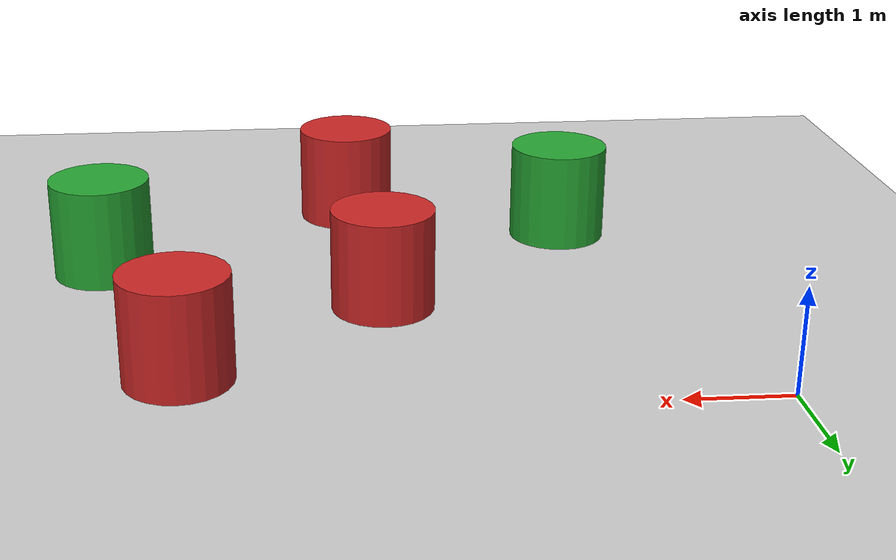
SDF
<sdf version="1.7">
 <world name="default">
  <model name="ground_plane">
   <static>1</static>
   <link name="link">
    <collision name="collision">
     <geometry><plane><normal>0 0 1</normal><size>100 100</size></plane></geometry>
     <surface>
      <contact><collide_bitmask>65535</collide_bitmask></contact>
      <friction><ode><mu>100</mu><mu2>50</mu2></ode></friction>
     </surface>
    </collision>
    <visual name="visual">
     <cast_shadows>0</cast_shadows>
     <geometry><plane><normal>0 0 1</normal><size>100 100</size></plane></geometry>
     <material>
      <script><uri>file://media/materials/scripts/gazebo.material</uri><name>Gazebo/Grey</name></script>
     </material>
    </visual>
   </link>
  </model>
  <model name="Astar_Dij_test.world_0">
   <link name="link_0_clone_10">
    <inertial>
     <mass>20</mass>
     <inertia><ixx>2.91667</ixx><ixy>0</ixy><ixz>0</ixz><iyy>2.91667</iyy><iyz>0</iyz><izz>2.5</izz></inertia>
    </inertial>
    <pose>12.0197 -4.31509 0 0 -0 0</pose>
    <visual name="visual">
     <geometry><cylinder><radius>0.5</radius><length>1</length></cylinder></geometry>
     <material>
      <lighting>1</lighting>
      <script><uri>file://media/materials/scripts/gazebo.material</uri><name>Gazebo/Red</name></script>
      <shader type="pixel"><normal_map>__default__</normal_map></shader>
      <ambient>1 0 0 1</ambient>
      <diffuse>1 0 0 1</diffuse>
      <specular>0.1 0.1 0.1 1</specular>
      <emissive>0 0 0 1</emissive>
     </material>
    </visual>
    <collision name="collision">
     <geometry><cylinder><radius>0.5</radius><length>1</length></cylinder></geometry>
     <surface>
      <friction>
       <ode><mu>1</mu><mu2>1</mu2><fdir1>0 0 0</fdir1><slip1>0</slip1><slip2>0</slip2></ode>
       <torsional>
        <coefficient>1</coefficient>
        <patch_radius>0</patch_radius>
        <surface_radius>0</surface_radius>
        <use_patch_radius>1</use_patch_radius>
        <ode><slip>0</slip></ode>
       </torsional>
      </friction>
      <bounce><restitution_coefficient>0</restitution_coefficient><threshold>1e+06</threshold></bounce>
      <contact>
       <collide_without_contact>0</collide_without_contact>
       <collide_without_contact_bitmask>1</collide_without_contact_bitmask>
       <collide_bitmask>1</collide_bitmask>
       <ode>
        <soft_cfm>0</soft_cfm>
        <soft_erp>0.2</soft_erp>
        <kp>1e+13</kp>
        <kd>1</kd>
        <max_vel>0.01</max_vel>
        <min_depth>0</min_depth>
       </ode>
       <bullet>
        <split_impulse>1</split_impulse>
        <split_impulse_penetration_threshold>-0.01</split_impulse_penetration_threshold>
        <soft_cfm>0</soft_cfm>
        <soft_erp>0.2</soft_erp>
        <kp>1e+13</kp>
        <kd>1</kd>
       </bullet>
      </contact>
     </surface>
    </collision>
   </link>
   <link name="link_0_clone_6">
    <inertial>
     <mass>20</mass>
     <inertia><ixx>2.91667</ixx><ixy>0</ixy><ixz>0</ixz><iyy>2.91667</iyy><iyz>0</iyz><izz>2.5</izz></inertia>
    </inertial>
    <pose>10.1266 -5.74101 0 0 -0 0</pose>
    <visual name="visual">
     <geometry><cylinder><radius>0.5</radius><length>1</length></cylinder></geometry>
     <material>
      <lighting>1</lighting>
      <script><uri>file://media/materials/scripts/gazebo.material</uri><name>Gazebo/Red</name></script>
      <shader type="pixel"><normal_map>__default__</normal_map></shader>
      <ambient>1 0 0 1</ambient>
      <diffuse>1 0 0 1</diffuse>
      <specular>0.1 0.1 0.1 1</specular>
      <emissive>0 0 0 1</emissive>
     </material>
    </visual>
    <collision name="collision">
     <geometry><cylinder><radius>0.5</radius><length>1</length></cylinder></geometry>
     <surface>
      <friction>
       <ode><mu>1</mu><mu2>1</mu2><fdir1>0 0 0</fdir1><slip1>0</slip1><slip2>0</slip2></ode>
       <torsional>
        <coefficient>1</coefficient>
        <patch_radius>0</patch_radius>
        <surface_radius>0</surface_radius>
        <use_patch_radius>1</use_patch_radius>
        <ode><slip>0</slip></ode>
       </torsional>
      </friction>
      <bounce><restitution_coefficient>0</restitution_coefficient><threshold>1e+06</threshold></bounce>
      <contact>
       <collide_without_contact>0</collide_without_contact>
       <collide_without_contact_bitmask>1</collide_without_contact_bitmask>
       <collide_bitmask>1</collide_bitmask>
       <ode>
        <soft_cfm>0</soft_cfm>
        <soft_erp>0.2</soft_erp>
        <kp>1e+13</kp>
        <kd>1</kd>
        <max_vel>0.01</max_vel>
        <min_depth>0</min_depth>
       </ode>
       <bullet>
        <split_impulse>1</split_impulse>
        <split_impulse_penetration_threshold>-0.01</split_impulse_penetration_threshold>
        <soft_cfm>0</soft_cfm>
        <soft_erp>0.2</soft_erp>
        <kp>1e+13</kp>
        <kd>1</kd>
       </bullet>
      </contact>
     </surface>
    </collision>
   </link>
   <link name="link_0_clone_7">
    <inertial>
     <mass>20</mass>
     <inertia><ixx>2.91667</ixx><ixy>0</ixy><ixz>0</ixz><iyy>2.91667</iyy><iyz>0</iyz><izz>2.5</izz></inertia>
    </inertial>
    <pose>10.3373 -8.36463 0 0 -0 0</pose>
    <visual name="visual">
     <geometry><cylinder><radius>0.5</radius><length>1</length></cylinder></geometry>
     <material>
      <lighting>1</lighting>
      <script><uri>file://media/materials/scripts/gazebo.material</uri><name>Gazebo/Red</name></script>
      <shader type="pixel"><normal_map>__default__</normal_map></shader>
      <ambient>1 0 0 1</ambient>
      <diffuse>1 0 0 1</diffuse>
      <specular>0.1 0.1 0.1 1</specular>
      <emissive>0 0 0 1</emissive>
     </material>
    </visual>
    <collision name="collision">
     <geometry><cylinder><radius>0.5</radius><length>1</length></cylinder></geometry>
     <surface>
      <friction>
       <ode><mu>1</mu><mu2>1</mu2><fdir1>0 0 0</fdir1><slip1>0</slip1><slip2>0</slip2></ode>
       <torsional>
        <coefficient>1</coefficient>
        <patch_radius>0</patch_radius>
        <surface_radius>0</surface_radius>
        <use_patch_radius>1</use_patch_radius>
        <ode><slip>0</slip></ode>
       </torsional>
      </friction>
      <bounce><restitution_coefficient>0</restitution_coefficient><threshold>1e+06</threshold></bounce>
      <contact>
       <collide_without_contact>0</collide_without_contact>
       <collide_without_contact_bitmask>1</collide_without_contact_bitmask>
       <collide_bitmask>1</collide_bitmask>
       <ode>
        <soft_cfm>0</soft_cfm>
        <soft_erp>0.2</soft_erp>
        <kp>1e+13</kp>
        <kd>1</kd>
        <max_vel>0.01</max_vel>
        <min_depth>0</min_depth>
       </ode>
       <bullet>
        <split_impulse>1</split_impulse>
        <split_impulse_penetration_threshold>-0.01</split_impulse_penetration_threshold>
        <soft_cfm>0</soft_cfm>
        <soft_erp>0.2</soft_erp>
        <kp>1e+13</kp>
        <kd>1</kd>
       </bullet>
      </contact>
     </surface>
    </collision>
   </link>
   <link name="link_clone_11">
    <inertial>
     <mass>20</mass>
     <inertia><ixx>2.91667</ixx><ixy>0</ixy><ixz>0</ixz><iyy>2.91667</iyy><iyz>0</iyz><izz>2.5</izz></inertia>
    </inertial>
    <pose>8.1048 -7.56167 0 0 -0 0</pose>
    <visual name="visual">
     <geometry><cylinder><radius>0.5</radius><length>1</length></cylinder></geometry>
     <material>
      <script><name>Gazebo/Green</name><uri>file://media/materials/scripts/gazebo.material</uri></script>
      <shader type="pixel"><normal_map>__default__</normal_map></shader>
      <ambient>0 1 0 1</ambient>
      <diffuse>0 1 0 1</diffuse>
      <specular>0.1 0.1 0.1 1</specular>
      <emissive>0 0 0 1</emissive>
     </material>
    </visual>
    <collision name="collision">
     <geometry><cylinder><radius>0.5</radius><length>1</length></cylinder></geometry>
     <surface>
      <friction>
       <ode><mu>1</mu><mu2>1</mu2><fdir1>0 0 0</fdir1><slip1>0</slip1><slip2>0</slip2></ode>
       <torsional>
        <coefficient>1</coefficient>
        <patch_radius>0</patch_radius>
        <surface_radius>0</surface_radius>
        <use_patch_radius>1</use_patch_radius>
        <ode><slip>0</slip></ode>
       </torsional>
      </friction>
      <bounce><restitution_coefficient>0</restitution_coefficient><threshold>1e+06</threshold></bounce>
      <contact>
       <collide_without_contact>0</collide_without_contact>
       <collide_without_contact_bitmask>1</collide_without_contact_bitmask>
       <collide_bitmask>1</collide_bitmask>
       <ode>
        <soft_cfm>0</soft_cfm>
        <soft_erp>0.2</soft_erp>
        <kp>1e+13</kp>
        <kd>1</kd>
        <max_vel>0.01</max_vel>
        <min_depth>0</min_depth>
       </ode>
       <bullet>
        <split_impulse>1</split_impulse>
        <split_impulse_penetration_threshold>-0.01</split_impulse_penetration_threshold>
        <soft_cfm>0</soft_cfm>
        <soft_erp>0.2</soft_erp>
        <kp>1e+13</kp>
        <kd>1</kd>
       </bullet>
      </contact>
     </surface>
    </collision>
   </link>
   <link name="link_clone_5">
    <inertial>
     <mass>20</mass>
     <inertia><ixx>2.91667</ixx><ixy>0</ixy><ixz>0</ixz><iyy>2.91667</iyy><iyz>0</iyz><izz>2.5</izz></inertia>
    </inertial>
    <pose>12.8873 -6.85098 0 0 -0 0</pose>
    <visual name="visual">
     <geometry><cylinder><radius>0.5</radius><length>1</length></cylinder></geometry>
     <material>
      <script><name>Gazebo/Green</name><uri>file://media/materials/scripts/gazebo.material</uri></script>
      <shader type="pixel"><normal_map>__default__</normal_map></shader>
      <ambient>0 1 0 1</ambient>
      <diffuse>0 1 0 1</diffuse>
      <specular>0.1 0.1 0.1 1</specular>
      <emissive>0 0 0 1</emissive>
     </material>
    </visual>
    <collision name="collision">
     <geometry><cylinder><radius>0.5</radius><length>1</length></cylinder></geometry>
     <surface>
      <friction>
       <ode><mu>1</mu><mu2>1</mu2><fdir1>0 0 0</fdir1><slip1>0</slip1><slip2>0</slip2></ode>
       <torsional>
        <coefficient>1</coefficient>
        <patch_radius>0</patch_radius>
        <surface_radius>0</surface_radius>
        <use_patch_radius>1</use_patch_radius>
        <ode><slip>0</slip></ode>
       </torsional>
      </friction>
      <bounce><restitution_coefficient>0</restitution_coefficient><threshold>1e+06</threshold></bounce>
      <contact>
       <collide_without_contact>0</collide_without_contact>
       <collide_without_contact_bitmask>1</collide_without_contact_bitmask>
       <collide_bitmask>1</collide_bitmask>
       <ode>
        <soft_cfm>0</soft_cfm>
        <soft_erp>0.2</soft_erp>
        <kp>1e+13</kp>
        <kd>1</kd>
        <max_vel>0.01</max_vel>
        <min_depth>0</min_depth>
       </ode>
       <bullet>
        <split_impulse>1</split_impulse>
        <split_impulse_penetration_threshold>-0.01</split_impulse_penetration_threshold>
        <soft_cfm>0</soft_cfm>
        <soft_erp>0.2</soft_erp>
        <kp>1e+13</kp>
        <kd>1</kd>
       </bullet>
      </contact>
     </surface>
    </collision>
   </link>
   <static>0</static>
   <pose>-6.75878 3.55996 0.5 0 -0 0</pose>
  </model>
 </world>
</sdf>
